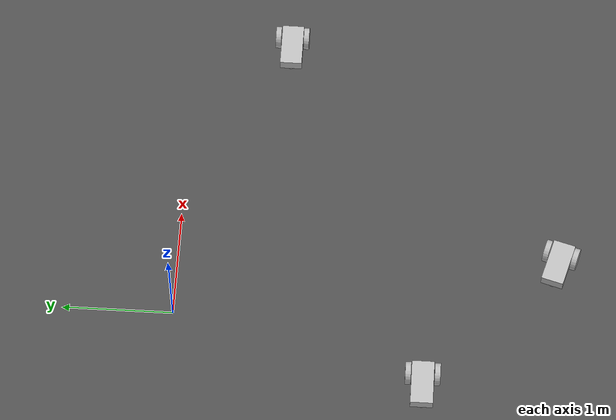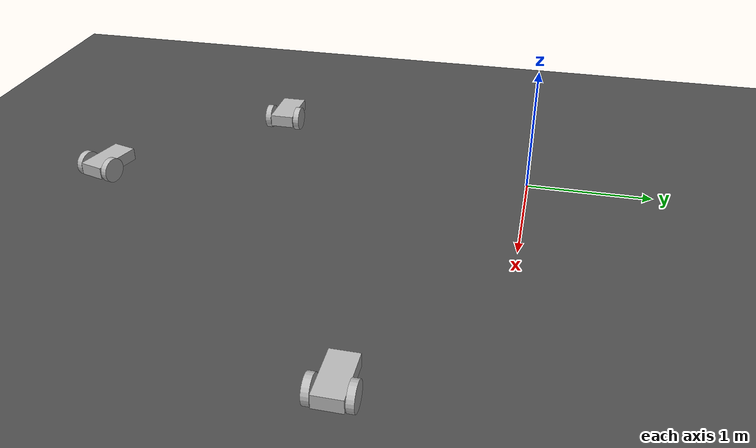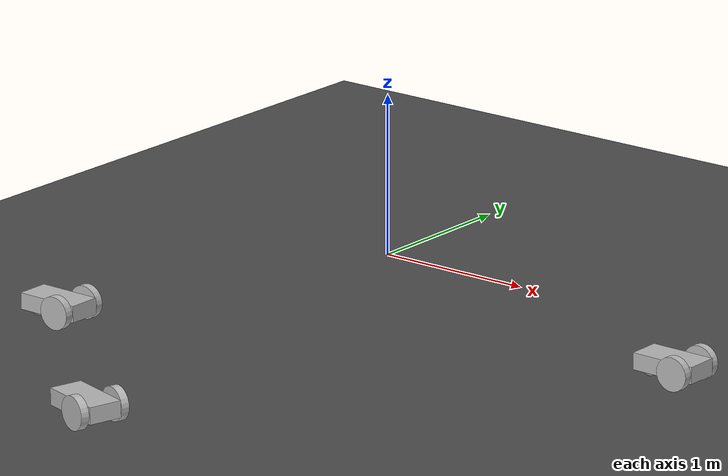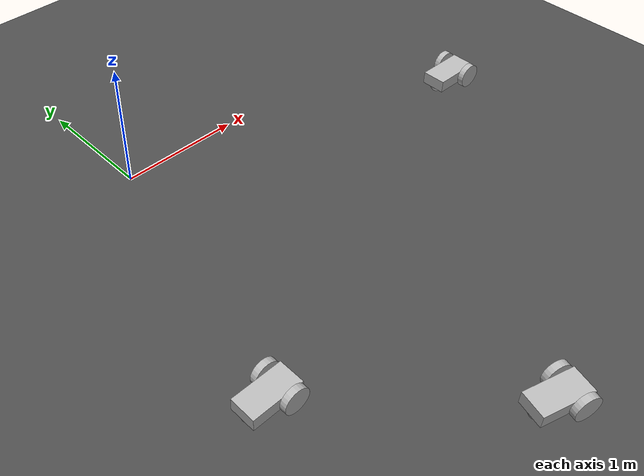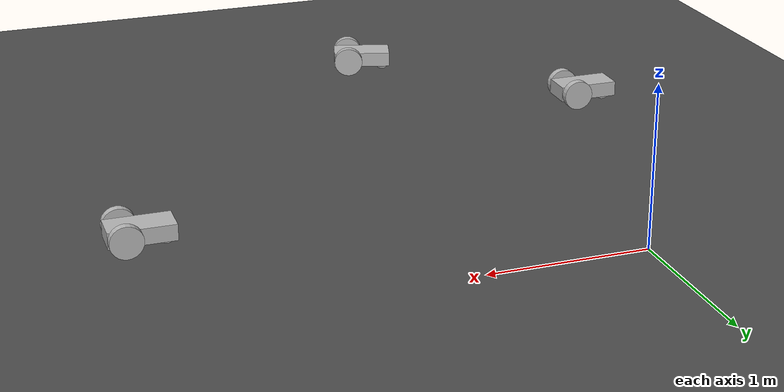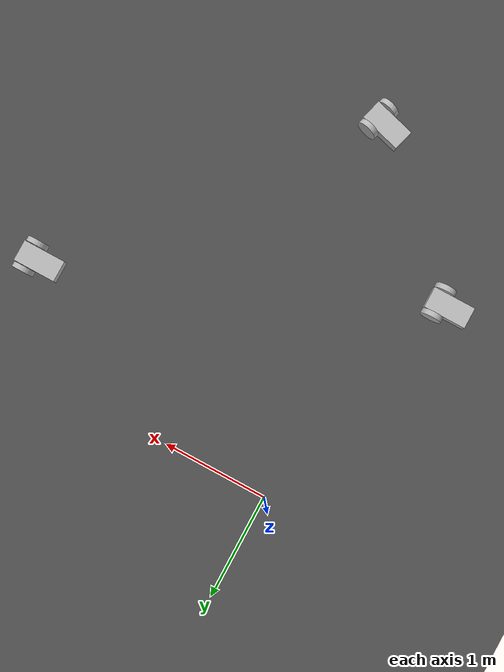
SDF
<sdf version="1.6">
 <world name="default">
  <model name="ground_plane">
   <static>1</static>
   <link name="link">
    <collision name="collision">
     <geometry><plane><normal>0 0 1</normal><size>100 100</size></plane></geometry>
     <surface><friction><ode><mu>100</mu><mu2>50</mu2></ode></friction></surface>
    </collision>
    <visual name="visual">
     <cast_shadows>0</cast_shadows>
     <geometry><plane><normal>0 0 1</normal><size>100 100</size></plane></geometry>
     <material>
      <script><uri>file://media/materials/scripts/gazebo.material</uri><name>Gazebo/Grey</name></script>
     </material>
    </visual>
   </link>
  </model>
  <model name="asphalt_plane">
   <static>1</static>
   <link name="link">
    <collision name="collision"><geometry><box><size>20 20 0.1</size></box></geometry></collision>
    <visual name="visual">
     <cast_shadows>0</cast_shadows>
     <geometry><box><size>20 20 0.1</size></box></geometry>
     <material>
      <script>
       <uri>model://asphalt_plane/materials/scripts</uri>
       <uri>model://asphalt_plane/materials/textures</uri>
       <name>vrc/asphalt</name>
      </script>
     </material>
    </visual>
   </link>
   <pose>0.031338 -0.069271 0 0 -0 0</pose>
  </model>
  <model name="my_robot_1">
   <static>0</static>
   <link name="chassis">
    <pose>0 0 0.1 0 -0 0</pose>
    <collision name="collision"><geometry><box><size>0.4 0.2 0.1</size></box></geometry></collision>
    <visual name="visual"><geometry><box><size>0.4 0.2 0.1</size></box></geometry></visual>
    <collision name="caster_collision">
     <pose>-0.15 0 -0.05 0 -0 0</pose>
     <geometry><sphere><radius>0.05</radius></sphere></geometry>
     <surface><friction><ode><mu>0</mu><mu2>0</mu2><slip1>1</slip1><slip2>1</slip2></ode></friction></surface>
    </collision>
    <visual name="caster_visual">
     <pose>-0.15 0 -0.05 0 -0 0</pose>
     <geometry><sphere><radius>0.05</radius></sphere></geometry>
    </visual>
    <inertial>
     <inertia><ixx>1</ixx><ixy>0</ixy><ixz>0</ixz><iyy>1</iyy><iyz>0</iyz><izz>1</izz></inertia>
     <mass>1</mass>
    </inertial>
   </link>
   <link name="left_wheel">
    <pose>0.1 0.13 0.1 -0 1.5707 1.5707</pose>
    <collision name="collision">
     <geometry><cylinder><radius>0.1</radius><length>0.05</length></cylinder></geometry>
    </collision>
    <visual name="visual">
     <geometry><cylinder><radius>0.1</radius><length>0.05</length></cylinder></geometry>
    </visual>
    <inertial>
     <inertia><ixx>1</ixx><ixy>0</ixy><ixz>0</ixz><iyy>1</iyy><iyz>0</iyz><izz>1</izz></inertia>
     <mass>1</mass>
    </inertial>
   </link>
   <link name="right_wheel">
    <pose>0.1 -0.13 0.1 -0 1.5707 1.5707</pose>
    <collision name="collision">
     <geometry><cylinder><radius>0.1</radius><length>0.05</length></cylinder></geometry>
    </collision>
    <visual name="visual">
     <geometry><cylinder><radius>0.1</radius><length>0.05</length></cylinder></geometry>
    </visual>
    <inertial>
     <inertia><ixx>1</ixx><ixy>0</ixy><ixz>0</ixz><iyy>1</iyy><iyz>0</iyz><izz>1</izz></inertia>
     <mass>1</mass>
    </inertial>
   </link>
   <link name="center">
    <pose>0 0 0.1 -0 1.5707 1.5707</pose>
    <collision name="collision">
     <geometry><cylinder><radius>0.1</radius><length>0.05</length></cylinder></geometry>
    </collision>
    <inertial>
     <inertia><ixx>1</ixx><ixy>0</ixy><ixz>0</ixz><iyy>1</iyy><iyz>0</iyz><izz>1</izz></inertia>
     <mass>1</mass>
    </inertial>
   </link>
   <joint name="center_hinge" type="revolute">
    <pose>0 0 -0.03 0 -0 0</pose>
    <child>center</child>
    <parent>chassis</parent>
    <axis>
     <xyz>0 1 0</xyz>
     <use_parent_model_frame>1</use_parent_model_frame>
     <limit><lower>-1e+16</lower><upper>1e+16</upper></limit>
     <dynamics><spring_reference>0</spring_reference><spring_stiffness>0</spring_stiffness></dynamics>
    </axis>
   </joint>
   <joint name="left_wheel_hinge" type="revolute">
    <pose>0 0 -0.03 0 -0 0</pose>
    <child>left_wheel</child>
    <parent>chassis</parent>
    <axis>
     <xyz>0 1 0</xyz>
     <use_parent_model_frame>1</use_parent_model_frame>
     <limit><lower>-1e+16</lower><upper>1e+16</upper></limit>
     <dynamics><spring_reference>0</spring_reference><spring_stiffness>0</spring_stiffness></dynamics>
    </axis>
   </joint>
   <joint name="right_wheel_hinge" type="revolute">
    <pose>0 0 0.03 0 -0 0</pose>
    <child>right_wheel</child>
    <parent>chassis</parent>
    <axis>
     <xyz>0 1 0</xyz>
     <use_parent_model_frame>1</use_parent_model_frame>
     <limit><lower>-1e+16</lower><upper>1e+16</upper></limit>
     <dynamics><spring_reference>0</spring_reference><spring_stiffness>0</spring_stiffness></dynamics>
    </axis>
   </joint>
   <pose>2.74607 -0.904595 0.050003 5e-06 5e-06 -0.005644</pose>
  </model>
  <model name="my_robot_3">
   <static>0</static>
   <link name="chassis">
    <pose>0 0 0.1 0 -0 0</pose>
    <collision name="collision"><geometry><box><size>0.4 0.2 0.1</size></box></geometry></collision>
    <visual name="visual"><geometry><box><size>0.4 0.2 0.1</size></box></geometry></visual>
    <collision name="caster_collision">
     <pose>-0.15 0 -0.05 0 -0 0</pose>
     <geometry><sphere><radius>0.05</radius></sphere></geometry>
     <surface><friction><ode><mu>0</mu><mu2>0</mu2><slip1>1</slip1><slip2>1</slip2></ode></friction></surface>
    </collision>
    <visual name="caster_visual">
     <pose>-0.15 0 -0.05 0 -0 0</pose>
     <geometry><sphere><radius>0.05</radius></sphere></geometry>
    </visual>
    <inertial>
     <inertia><ixx>1</ixx><ixy>0</ixy><ixz>0</ixz><iyy>1</iyy><iyz>0</iyz><izz>1</izz></inertia>
     <mass>1</mass>
    </inertial>
   </link>
   <link name="left_wheel">
    <pose>0.1 0.13 0.1 -0 1.5707 1.5707</pose>
    <collision name="collision">
     <geometry><cylinder><radius>0.1</radius><length>0.05</length></cylinder></geometry>
    </collision>
    <visual name="visual">
     <geometry><cylinder><radius>0.1</radius><length>0.05</length></cylinder></geometry>
    </visual>
    <inertial>
     <inertia><ixx>1</ixx><ixy>0</ixy><ixz>0</ixz><iyy>1</iyy><iyz>0</iyz><izz>1</izz></inertia>
     <mass>1</mass>
    </inertial>
   </link>
   <link name="right_wheel">
    <pose>0.1 -0.13 0.1 -0 1.5707 1.5707</pose>
    <collision name="collision">
     <geometry><cylinder><radius>0.1</radius><length>0.05</length></cylinder></geometry>
    </collision>
    <visual name="visual">
     <geometry><cylinder><radius>0.1</radius><length>0.05</length></cylinder></geometry>
    </visual>
    <inertial>
     <inertia><ixx>1</ixx><ixy>0</ixy><ixz>0</ixz><iyy>1</iyy><iyz>0</iyz><izz>1</izz></inertia>
     <mass>1</mass>
    </inertial>
   </link>
   <link name="center">
    <pose>0 0 0.1 -0 1.5707 1.5707</pose>
    <collision name="collision">
     <geometry><cylinder><radius>0.1</radius><length>0.05</length></cylinder></geometry>
    </collision>
    <inertial>
     <inertia><ixx>1</ixx><ixy>0</ixy><ixz>0</ixz><iyy>1</iyy><iyz>0</iyz><izz>1</izz></inertia>
     <mass>1</mass>
    </inertial>
   </link>
   <joint name="center_hinge" type="revolute">
    <pose>0 0 -0.03 0 -0 0</pose>
    <child>center</child>
    <parent>chassis</parent>
    <axis>
     <xyz>0 1 0</xyz>
     <use_parent_model_frame>1</use_parent_model_frame>
     <limit><lower>-1e+16</lower><upper>1e+16</upper></limit>
     <dynamics><spring_reference>0</spring_reference><spring_stiffness>0</spring_stiffness></dynamics>
    </axis>
   </joint>
   <joint name="left_wheel_hinge" type="revolute">
    <pose>0 0 -0.03 0 -0 0</pose>
    <child>left_wheel</child>
    <parent>chassis</parent>
    <axis>
     <xyz>0 1 0</xyz>
     <use_parent_model_frame>1</use_parent_model_frame>
     <limit><lower>-1e+16</lower><upper>1e+16</upper></limit>
     <dynamics><spring_reference>0</spring_reference><spring_stiffness>0</spring_stiffness></dynamics>
    </axis>
   </joint>
   <joint name="right_wheel_hinge" type="revolute">
    <pose>0 0 0.03 0 -0 0</pose>
    <child>right_wheel</child>
    <parent>chassis</parent>
    <axis>
     <xyz>0 1 0</xyz>
     <use_parent_model_frame>1</use_parent_model_frame>
     <limit><lower>-1e+16</lower><upper>1e+16</upper></limit>
     <dynamics><spring_reference>0</spring_reference><spring_stiffness>0</spring_stiffness></dynamics>
    </axis>
   </joint>
   <pose>0.612845 -3.4331 0.050002 3e-06 2e-06 -0.276191</pose>
  </model>
  <model name="my_robot_5">
   <static>0</static>
   <link name="chassis">
    <pose>0 0 0.1 0 -0 0</pose>
    <collision name="collision"><geometry><box><size>0.4 0.2 0.1</size></box></geometry></collision>
    <visual name="visual"><geometry><box><size>0.4 0.2 0.1</size></box></geometry></visual>
    <collision name="caster_collision">
     <pose>-0.15 0 -0.05 0 -0 0</pose>
     <geometry><sphere><radius>0.05</radius></sphere></geometry>
     <surface><friction><ode><mu>0</mu><mu2>0</mu2><slip1>1</slip1><slip2>1</slip2></ode></friction></surface>
    </collision>
    <visual name="caster_visual">
     <pose>-0.15 0 -0.05 0 -0 0</pose>
     <geometry><sphere><radius>0.05</radius></sphere></geometry>
    </visual>
    <inertial>
     <inertia><ixx>1</ixx><ixy>0</ixy><ixz>0</ixz><iyy>1</iyy><iyz>0</iyz><izz>1</izz></inertia>
     <mass>1</mass>
    </inertial>
   </link>
   <link name="left_wheel">
    <pose>0.1 0.13 0.1 -0 1.5707 1.5707</pose>
    <collision name="collision">
     <geometry><cylinder><radius>0.1</radius><length>0.05</length></cylinder></geometry>
    </collision>
    <visual name="visual">
     <geometry><cylinder><radius>0.1</radius><length>0.05</length></cylinder></geometry>
    </visual>
    <inertial>
     <inertia><ixx>1</ixx><ixy>0</ixy><ixz>0</ixz><iyy>1</iyy><iyz>0</iyz><izz>1</izz></inertia>
     <mass>1</mass>
    </inertial>
   </link>
   <link name="right_wheel">
    <pose>0.1 -0.13 0.1 -0 1.5707 1.5707</pose>
    <collision name="collision">
     <geometry><cylinder><radius>0.1</radius><length>0.05</length></cylinder></geometry>
    </collision>
    <visual name="visual">
     <geometry><cylinder><radius>0.1</radius><length>0.05</length></cylinder></geometry>
    </visual>
    <inertial>
     <inertia><ixx>1</ixx><ixy>0</ixy><ixz>0</ixz><iyy>1</iyy><iyz>0</iyz><izz>1</izz></inertia>
     <mass>1</mass>
    </inertial>
   </link>
   <link name="center">
    <pose>0 0 0.1 -0 1.5707 1.5707</pose>
    <collision name="collision">
     <geometry><cylinder><radius>0.1</radius><length>0.05</length></cylinder></geometry>
    </collision>
    <inertial>
     <inertia><ixx>1</ixx><ixy>0</ixy><ixz>0</ixz><iyy>1</iyy><iyz>0</iyz><izz>1</izz></inertia>
     <mass>1</mass>
    </inertial>
   </link>
   <joint name="center_hinge" type="revolute">
    <pose>0 0 -0.03 0 -0 0</pose>
    <child>center</child>
    <parent>chassis</parent>
    <axis>
     <xyz>0 1 0</xyz>
     <use_parent_model_frame>1</use_parent_model_frame>
     <limit><lower>-1e+16</lower><upper>1e+16</upper></limit>
     <dynamics><spring_reference>0</spring_reference><spring_stiffness>0</spring_stiffness></dynamics>
    </axis>
   </joint>
   <joint name="left_wheel_hinge" type="revolute">
    <pose>0 0 -0.03 0 -0 0</pose>
    <child>left_wheel</child>
    <parent>chassis</parent>
    <axis>
     <xyz>0 1 0</xyz>
     <use_parent_model_frame>1</use_parent_model_frame>
     <limit><lower>-1e+16</lower><upper>1e+16</upper></limit>
     <dynamics><spring_reference>0</spring_reference><spring_stiffness>0</spring_stiffness></dynamics>
    </axis>
   </joint>
   <joint name="right_wheel_hinge" type="revolute">
    <pose>0 0 0.03 0 -0 0</pose>
    <child>right_wheel</child>
    <parent>chassis</parent>
    <axis>
     <xyz>0 1 0</xyz>
     <use_parent_model_frame>1</use_parent_model_frame>
     <limit><lower>-1e+16</lower><upper>1e+16</upper></limit>
     <dynamics><spring_reference>0</spring_reference><spring_stiffness>0</spring_stiffness></dynamics>
    </axis>
   </joint>
   <pose>-0.633439 -2.25873 0.050002 -1e-06 -4e-06 -0.002531</pose>
  </model>
 </world>
</sdf>
